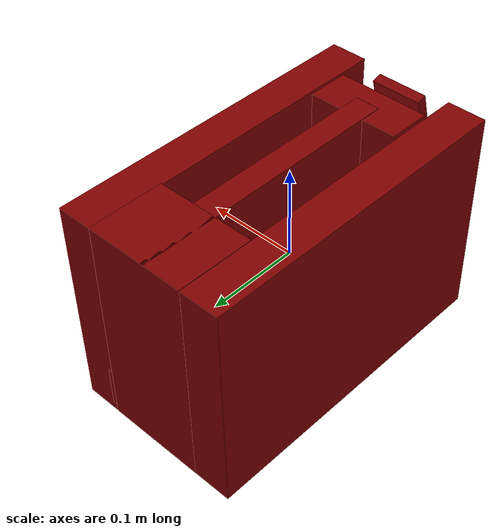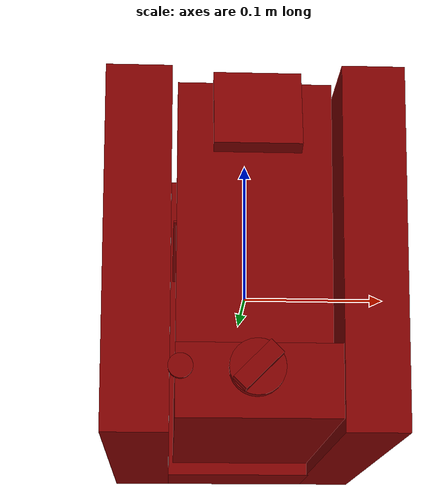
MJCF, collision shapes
<?xml version='1.0' encoding='UTF-8'?>
<mujoco model="model">
  <option timestep="0.002" gravity="0.0 0.0 -9.81"/>
  <compiler angle="radian"/>
  <asset>
    <mesh file="visuals/button_cancel.obj" name="button_cancel_vis"/>
    <mesh file="visuals/knob_doneness.obj" name="knob_doneness_vis"/>
    <mesh file="visuals/lever.obj" name="lever_vis"/>
    <mesh file="visuals/Body001.obj" name="Body001_vis"/>
    <texture file="visuals/T_BC001.png" name="Body001_material" type="2d"/>
    <material name="Body001_material" rgba="1 1 1 1.0" texture="Body001_material" shininess="0.4472135901451111" specular="0.6"/>
    <texture file="visuals/T_BC001.png" name="button_cancel_material" type="2d"/>
    <material name="button_cancel_material" rgba="1 1 1 1.0" texture="button_cancel_material" shininess="0.4472135901451111" specular="1"/>
    <texture file="visuals/T_BC001.png" name="knob_doneness_material" type="2d"/>
    <material name="knob_doneness_material" rgba="1 1 1 1.0" texture="knob_doneness_material" shininess="0.4472135901451111" specular="0.8"/>
    <texture file="visuals/T_BC001.png" name="lever_material" type="2d"/>
    <material name="lever_material" rgba="1 1 1 1.0" texture="lever_material" shininess="0.4472135901451111" specular="0.8"/>
  </asset>
  <default>
    <default class="visual">
      <geom conaffinity="0" contype="0" group="1" type="mesh"/>
    </default>
    <default class="collision">
      <geom group="0" rgba="0.5 0 0 0.5" density="1.0" solref="0.004 1" solimp="0.998 0.998 0.001"/>
    </default>
    <default class="spawn">
      <geom group="0" rgba="1 1 1 0.5" contype="0" conaffinity="0"/>
      <site group="0" rgba="1 1 1 0.5"/>
    </default>
    <default class="region">
      <geom group="1" conaffinity="0" contype="0" rgba="0 1 0 0" mass="0"/>
    </default>
  </default>
  <worldbody>
    <body>
      <body name="object">
        <geom mesh="Body001_vis" type="mesh" solimp="0.998 0.998 0.001" solref="0.001 1" friction="0.95 0.3 0.1" class="visual" material="Body001_material"/>
        <geom type="box" pos="-0.07504845 0.01058266 0.00021636" size="0.021174892783164978 0.17523810267448425 0.11730574816465378" quat="1.0 0.0 0.0 0.0" class="collision"/>
        <geom type="box" pos="0.07381747 0.00834707 0.00021636" size="0.020160019397735596 0.1774737387895584 0.11730577051639557" quat="1.0 0.0 0.0 0.0" class="collision"/>
        <geom type="box" pos="0.00148916 0.03754975 0.00545023" size="0.013403093442320824 0.14827120304107666 0.11274226754903793" quat="1.0 0.0 0.0 0.0" class="collision"/>
        <geom type="box" pos="0.00073473 0.14547075 0.00055153" size="0.05448992922902107 0.040457259863615036 0.11764099448919296" quat="1.0 0.0 0.0 0.0" class="collision"/>
        <geom type="box" pos="0.00017980 -0.10956949 0.00530475" size="0.050426919013261795 0.02293148636817932 0.1123087927699089" quat="1.0 0.0 0.0 0.0" class="collision"/>
        <geom type="box" pos="0.00488791 0.01114249 -0.08444864" size="0.05540130287408829 0.17467844486236572 0.023428503423929214" quat="1.0 0.0 0.0 0.0" class="collision"/>
        <body name="button_cancel">
          <joint axis="0.0 1.0 0.0" pos="-0.04723416 -0.16826971 -0.07679564" limited="true" name="button_cancel_joint" range="0.0 0.002" type="slide" damping="1" frictionloss="1" armature=".01" stiffness="0.05"/>
          <geom mesh="button_cancel_vis" type="mesh" solimp="0.998 0.998 0.001" solref="0.001 1" friction="0.95 0.3 0.1" class="visual" material="button_cancel_material"/>
          <geom class="collision" type="cylinder" pos="-0.04726291 -0.16874505 -0.07679604" size="0.007795682642608881 0.0016939903143793344" quat="0.7071067094802856 0.70710688829422 0.0 0.0" name="button_cancel_main"/>
        </body>
        <body name="knob_doneness">
          <joint axis="0.0 1.0 0.0" pos="-0.00005406 -0.17574685 -0.07763972" limited="true" name="knob_doneness_joint" range="0.0 4.71238898038469" type="hinge" damping="0.05" frictionloss="0.1" armature="0.001"/>
          <geom mesh="knob_doneness_vis" type="mesh" solimp="0.998 0.998 0.001" solref="0.001 1" friction="0.95 0.3 0.1" class="visual" material="knob_doneness_material"/>
          <geom type="cylinder" pos="-0.00011330 -0.17101034 -0.07769664" size="0.01758095808327198 0.004087055567651987" quat="0.7071068286895752 0.7071067690849304 0.0 0.0" class="collision" density="0.001"/>
          <geom class="collision" type="box" pos="-0.00014808 -0.18031519 -0.07795726" size="0.005595101974904537 0.004999999888241291 0.016220778226852417" quat="0.9238795042037964 0.0 0.3826834559440613 0.0" name="knob_doneness_main" density="0.001"/>
        </body>
        <body name="lever">
          <joint axis="0.0 0.0 -1.0" pos="0.00000138 -0.14242431 0.08540410" limited="true" name="lever_joint" range="0.0 0.06" type="slide" damping="1" frictionloss="1" armature=".01" stiffness="2.2" springref="-0.5"/>
          <geom class="region" name="reg_slotL" type="box" pos="-0.032787995 0.009268605 0.11677094499999999" size="0.019773335000000003 0.093749535 0.076000075"/>
          <geom class="region" name="reg_slotR" type="box" pos="0.0337854 0.009268605 0.11677094499999999" size="0.01761961 0.093749535 0.076000075"/>
          <geom mesh="lever_vis" type="mesh" solimp="0.998 0.998 0.001" solref="0.001 1" friction="0.95 0.3 0.1" class="visual" material="lever_material"/>
          <geom class="collision" type="box" pos="0.00020692 -0.16417966 0.08713321" size="0.0056160325184464455 0.027931539341807365 0.026226477697491646" quat="0.7013015151023865 -0.09042166918516159 0.09042159467935562 0.7013016939163208" name="lever_handle"/>
          <geom class="collision" type="box" pos="-0.03304620 0.00926392 0.03621329" size="0.01916724070906639 0.09201328456401825 0.0007658192771486938" quat="1.0 0.0 0.0 0.0" name="slotL_floor"/>
          <geom class="collision" type="box" pos="0.03423255 0.00926392 0.03621329" size="0.017851172015070915 0.09201328456401825 0.0007658193353563547" quat="1.0 0.0 0.0 0.0" name="slotR_floor"/>
        </body>
        <geom class="region" name="reg_main" type="box" pos="-5.000000004307115e-09 0.009033680000000002 -3.800000000012127e-07" size="0.09439610500000001 0.17750923000000002 0.1176007"/>
      </body>
    </body>
  </worldbody>
  <actuator>
    <motor name="button_cancel_joint_actuator" joint="button_cancel_joint" gear="0.5"/>
    <motor name="knob_doneness_joint_actuator" joint="knob_doneness_joint" gear="10"/>
    <motor name="lever_joint_actuator" joint="lever_joint" gear="2"/>
  </actuator>
</mujoco>
